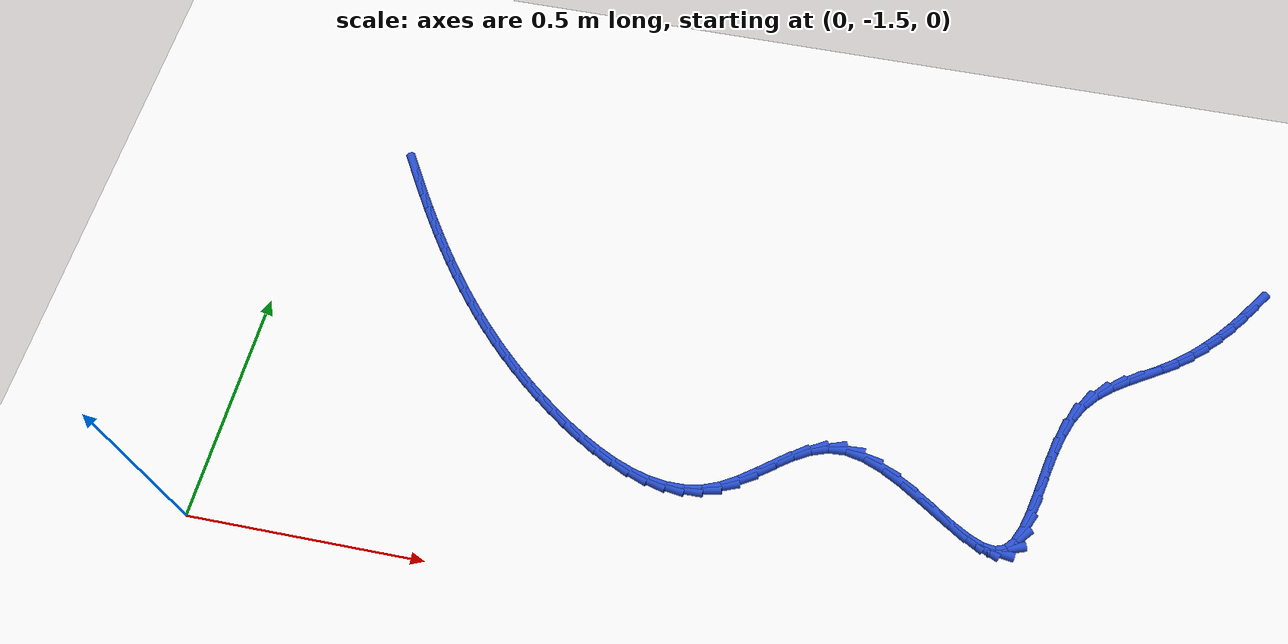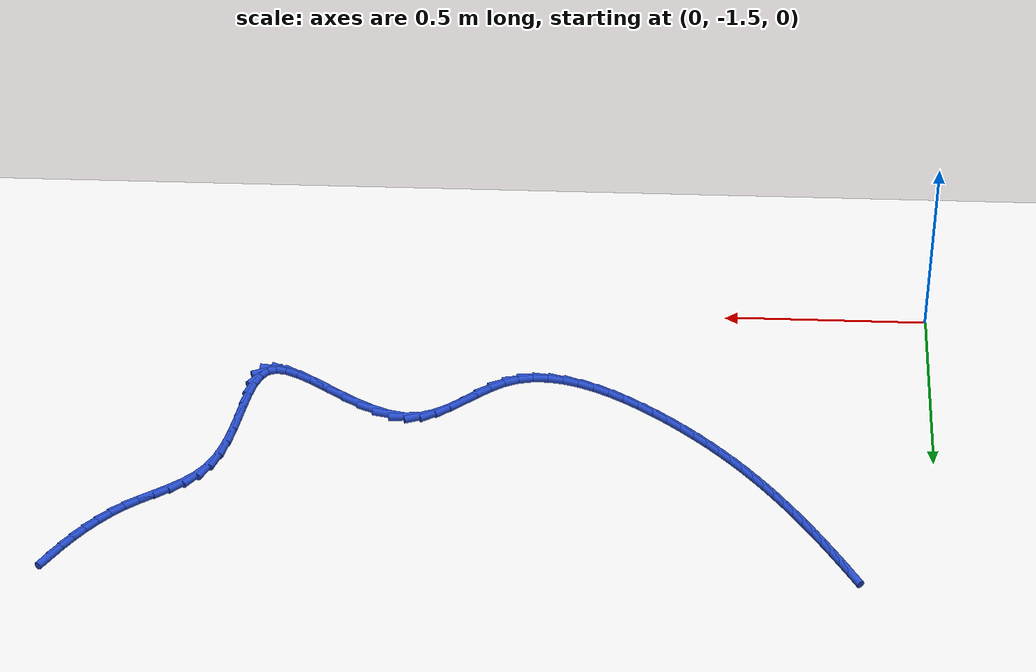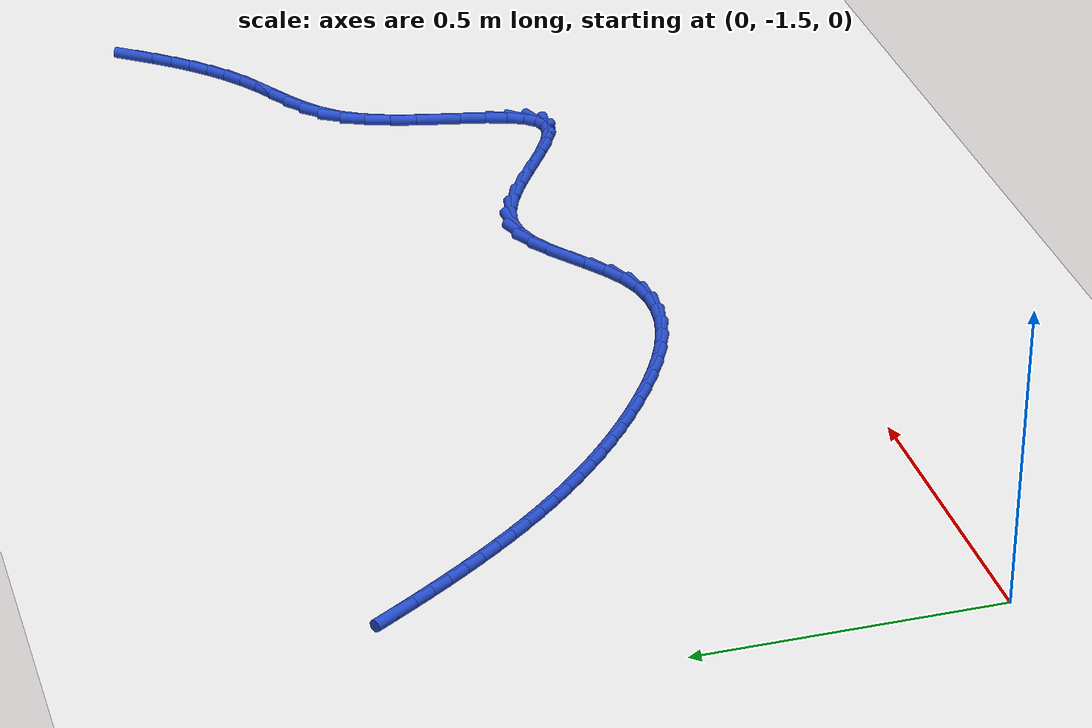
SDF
<sdf version="1.6">
 <world name="default">
  <model name="ground_plane">
   <static>1</static>
   <link name="link">
    <collision name="collision">
     <geometry><plane><normal>0 0 1</normal><size>100 100</size></plane></geometry>
     <surface><friction><ode><mu>100</mu><mu2>50</mu2></ode></friction></surface>
    </collision>
    <visual name="visual">
     <cast_shadows>0</cast_shadows>
     <geometry><plane><normal>0 0 1</normal><size>100 100</size></plane></geometry>
     <material>
      <script><uri>file://media/materials/scripts/gazebo.material</uri><name>Gazebo/WhiteGlow</name></script>
     </material>
    </visual>
   </link>
  </model>
  <model name="line">
   <link name="link_117">
    <pose>2.0910883042516453 -0.603083255693947 0.01 0 1.57 0.9489113558905689</pose>
    <collision name="collision">
     <geometry><cylinder><radius>0.01</radius><length>0.08</length></cylinder></geometry>
    </collision>
    <visual name="visual">
     <material>
      <script><name>Gazebo/Blue</name><uri>file://media/materials/scripts/gazebo.material</uri></script>
     </material>
     <geometry><cylinder><radius>0.01</radius><length>0.08</length></cylinder></geometry>
    </visual>
   </link>
   <link name="link_118">
    <pose>2.0681599488108424 -0.6350722097998005 0.01 0 1.57 0.9097379951899129</pose>
    <collision name="collision">
     <geometry><cylinder><radius>0.01</radius><length>0.08</length></cylinder></geometry>
    </collision>
    <visual name="visual">
     <material>
      <script><name>Gazebo/Blue</name><uri>file://media/materials/scripts/gazebo.material</uri></script>
     </material>
     <geometry><cylinder><radius>0.01</radius><length>0.08</length></cylinder></geometry>
    </visual>
   </link>
   <link name="link_119">
    <pose>2.0441043361655433 -0.6659998869459944 0.01 0 1.57 0.8632323567325106</pose>
    <collision name="collision">
     <geometry><cylinder><radius>0.01</radius><length>0.08</length></cylinder></geometry>
    </collision>
    <visual name="visual">
     <material>
      <script><name>Gazebo/Blue</name><uri>file://media/materials/scripts/gazebo.material</uri></script>
     </material>
     <geometry><cylinder><radius>0.01</radius><length>0.08</length></cylinder></geometry>
    </visual>
   </link>
   <link name="link_120">
    <pose>2.0187697473662283 -0.6956205306379298 0.01 0 1.57 0.8091488543556347</pose>
    <collision name="collision">
     <geometry><cylinder><radius>0.01</radius><length>0.08</length></cylinder></geometry>
    </collision>
    <visual name="visual">
     <material>
      <script><name>Gazebo/Blue</name><uri>file://media/materials/scripts/gazebo.material</uri></script>
     </material>
     <geometry><cylinder><radius>0.01</radius><length>0.08</length></cylinder></geometry>
    </visual>
   </link>
   <link name="link_121">
    <pose>1.992004463463375 -0.723688384381008 0.01 0 1.57 0.7473626050932654</pose>
    <collision name="collision">
     <geometry><cylinder><radius>0.01</radius><length>0.08</length></cylinder></geometry>
    </collision>
    <visual name="visual">
     <material>
      <script><name>Gazebo/Blue</name><uri>file://media/materials/scripts/gazebo.material</uri></script>
     </material>
     <geometry><cylinder><radius>0.01</radius><length>0.08</length></cylinder></geometry>
    </visual>
   </link>
   <link name="link_122">
    <pose>1.9636567655074628 -0.7499576916806296 0.01 0 1.57 0.6779664400903238</pose>
    <collision name="collision">
     <geometry><cylinder><radius>0.01</radius><length>0.08</length></cylinder></geometry>
    </collision>
    <visual name="visual">
     <material>
      <script><name>Gazebo/Blue</name><uri>file://media/materials/scripts/gazebo.material</uri></script>
     </material>
     <geometry><cylinder><radius>0.01</radius><length>0.08</length></cylinder></geometry>
    </visual>
   </link>
   <link name="link_123">
    <pose>1.9335749345489706 -0.7741826960421963 0.01 0 1.57 0.6023985125735167</pose>
    <collision name="collision">
     <geometry><cylinder><radius>0.01</radius><length>0.08</length></cylinder></geometry>
    </collision>
    <visual name="visual">
     <material>
      <script><name>Gazebo/Blue</name><uri>file://media/materials/scripts/gazebo.material</uri></script>
     </material>
     <geometry><cylinder><radius>0.01</radius><length>0.08</length></cylinder></geometry>
    </visual>
   </link>
   <link name="link_124">
    <pose>1.9016315048914676 -0.7961490337887418 0.01 0 1.57 0.5489062338513397</pose>
    <collision name="collision">
     <geometry><cylinder><radius>0.01</radius><length>0.08</length></cylinder></geometry>
    </collision>
    <visual name="visual">
     <material>
      <script><name>Gazebo/Blue</name><uri>file://media/materials/scripts/gazebo.material</uri></script>
     </material>
     <geometry><cylinder><radius>0.01</radius><length>0.08</length></cylinder></geometry>
    </visual>
   </link>
   <link name="link_125">
    <pose>1.8683600106695684 -0.8164979232583782 0.01 0 1.57 0.5471080242328394</pose>
    <collision name="collision">
     <geometry><cylinder><radius>0.01</radius><length>0.08</length></cylinder></geometry>
    </collision>
    <visual name="visual">
     <material>
      <script><name>Gazebo/Blue</name><uri>file://media/materials/scripts/gazebo.material</uri></script>
     </material>
     <geometry><cylinder><radius>0.01</radius><length>0.08</length></cylinder></geometry>
    </visual>
   </link>
   <link name="link_126">
    <pose>1.8350179577137176 -0.8368076740459577 0.01 0 1.57 0.5983735897410043</pose>
    <collision name="collision">
     <geometry><cylinder><radius>0.01</radius><length>0.08</length></cylinder></geometry>
    </collision>
    <visual name="visual">
     <material>
      <script><name>Gazebo/Blue</name><uri>file://media/materials/scripts/gazebo.material</uri></script>
     </material>
     <geometry><cylinder><radius>0.01</radius><length>0.08</length></cylinder></geometry>
    </visual>
   </link>
   <link name="link_127">
    <pose>1.8028997321825857 -0.8587043327411968 0.01 0 1.57 0.7035047867099672</pose>
    <collision name="collision">
     <geometry><cylinder><radius>0.01</radius><length>0.08</length></cylinder></geometry>
    </collision>
    <visual name="visual">
     <material>
      <script><name>Gazebo/Blue</name><uri>file://media/materials/scripts/gazebo.material</uri></script>
     </material>
     <geometry><cylinder><radius>0.01</radius><length>0.08</length></cylinder></geometry>
    </visual>
   </link>
   <link name="link_128">
    <pose>1.7732997202348453 -0.8838139459338126 0.01 0 1.57 0.8599190182430392</pose>
    <collision name="collision">
     <geometry><cylinder><radius>0.01</radius><length>0.08</length></cylinder></geometry>
    </collision>
    <visual name="visual">
     <material>
      <script><name>Gazebo/Blue</name><uri>file://media/materials/scripts/gazebo.material</uri></script>
     </material>
     <geometry><cylinder><radius>0.01</radius><length>0.08</length></cylinder></geometry>
    </visual>
   </link>
   <link name="link_129">
    <pose>1.7475123080291655 -0.9137625602135209 0.01 0 1.57 1.0482765522238797</pose>
    <collision name="collision">
     <geometry><cylinder><radius>0.01</radius><length>0.08</length></cylinder></geometry>
    </collision>
    <visual name="visual">
     <material>
      <script><name>Gazebo/Blue</name><uri>file://media/materials/scripts/gazebo.material</uri></script>
     </material>
     <geometry><cylinder><radius>0.01</radius><length>0.08</length></cylinder></geometry>
    </visual>
   </link>
   <link name="link_130">
    <pose>1.7266770788756765 -0.9499403290383713 0.01 0 1.57 1.1984696601797593</pose>
    <collision name="collision">
     <geometry><cylinder><radius>0.01</radius><length>0.08</length></cylinder></geometry>
    </collision>
    <visual name="visual">
     <material>
      <script><name>Gazebo/Blue</name><uri>file://media/materials/scripts/gazebo.material</uri></script>
     </material>
     <geometry><cylinder><radius>0.01</radius><length>0.08</length></cylinder></geometry>
    </visual>
   </link>
   <link name="link_131">
    <pose>1.7104533843161078 -0.991481785180278 0.01 0 1.57 1.2929285482295565</pose>
    <collision name="collision">
     <geometry><cylinder><radius>0.01</radius><length>0.08</length></cylinder></geometry>
    </collision>
    <visual name="visual">
     <material>
      <script><name>Gazebo/Blue</name><uri>file://media/materials/scripts/gazebo.material</uri></script>
     </material>
     <geometry><cylinder><radius>0.01</radius><length>0.08</length></cylinder></geometry>
    </visual>
   </link>
   <link name="link_132">
    <pose>1.6976781691881468 -1.03626825389754 0.01 0 1.57 1.345933554381266</pose>
    <collision name="collision">
     <geometry><cylinder><radius>0.01</radius><length>0.08</length></cylinder></geometry>
    </collision>
    <visual name="visual">
     <material>
      <script><name>Gazebo/Blue</name><uri>file://media/materials/scripts/gazebo.material</uri></script>
     </material>
     <geometry><cylinder><radius>0.01</radius><length>0.08</length></cylinder></geometry>
    </visual>
   </link>
   <link name="link_133">
    <pose>1.6871795618790968 -1.0821676256821648 0.01 0 1.57 1.3644650015767998</pose>
    <collision name="collision">
     <geometry><cylinder><radius>0.01</radius><length>0.08</length></cylinder></geometry>
    </collision>
    <visual name="visual">
     <material>
      <script><name>Gazebo/Blue</name><uri>file://media/materials/scripts/gazebo.material</uri></script>
     </material>
     <geometry><cylinder><radius>0.01</radius><length>0.08</length></cylinder></geometry>
    </visual>
   </link>
   <link name="link_134">
    <pose>1.6777856907762598 -1.1270477910261583 0.01 0 1.57 1.347839857289276</pose>
    <collision name="collision">
     <geometry><cylinder><radius>0.01</radius><length>0.08</length></cylinder></geometry>
    </collision>
    <visual name="visual">
     <material>
      <script><name>Gazebo/Blue</name><uri>file://media/materials/scripts/gazebo.material</uri></script>
     </material>
     <geometry><cylinder><radius>0.01</radius><length>0.08</length></cylinder></geometry>
    </visual>
   </link>
   <link name="link_135">
    <pose>1.668324684266939 -1.1687766404215283 0.01 0 1.57 1.2852305531044195</pose>
    <collision name="collision">
     <geometry><cylinder><radius>0.01</radius><length>0.08</length></cylinder></geometry>
    </collision>
    <visual name="visual">
     <material>
      <script><name>Gazebo/Blue</name><uri>file://media/materials/scripts/gazebo.material</uri></script>
     </material>
     <geometry><cylinder><radius>0.01</radius><length>0.08</length></cylinder></geometry>
    </visual>
   </link>
   <link name="link_136">
    <pose>1.657624670738437 -1.205222064360281 0.01 0 1.57 1.1465841877371827</pose>
    <collision name="collision">
     <geometry><cylinder><radius>0.01</radius><length>0.08</length></cylinder></geometry>
    </collision>
    <visual name="visual">
     <material>
      <script><name>Gazebo/Blue</name><uri>file://media/materials/scripts/gazebo.material</uri></script>
     </material>
     <geometry><cylinder><radius>0.01</radius><length>0.08</length></cylinder></geometry>
    </visual>
   </link>
   <link name="link_137">
    <pose>1.6445137785780561 -1.2342519533344236 0.01 0 1.57 0.8623305795887752</pose>
    <collision name="collision">
     <geometry><cylinder><radius>0.01</radius><length>0.08</length></cylinder></geometry>
    </collision>
    <visual name="visual">
     <material>
      <script><name>Gazebo/Blue</name><uri>file://media/materials/scripts/gazebo.material</uri></script>
     </material>
     <geometry><cylinder><radius>0.01</radius><length>0.08</length></cylinder></geometry>
    </visual>
   </link>
   <link name="link_138">
    <pose>1.6278201361731 -1.2537341978359628 0.01 0 1.57 0.35288094552549476</pose>
    <collision name="collision">
     <geometry><cylinder><radius>0.01</radius><length>0.08</length></cylinder></geometry>
    </collision>
    <visual name="visual">
     <material>
      <script><name>Gazebo/Blue</name><uri>file://media/materials/scripts/gazebo.material</uri></script>
     </material>
     <geometry><cylinder><radius>0.01</radius><length>0.08</length></cylinder></geometry>
    </visual>
   </link>
   <link name="link_139">
    <pose>1.6064072611299218 -1.2616204903429031 0.01 0 1.57 -0.1364085439508365</pose>
    <collision name="collision">
     <geometry><cylinder><radius>0.01</radius><length>0.08</length></cylinder></geometry>
    </collision>
    <visual name="visual">
     <material>
      <script><name>Gazebo/Blue</name><uri>file://media/materials/scripts/gazebo.material</uri></script>
     </material>
     <geometry><cylinder><radius>0.01</radius><length>0.08</length></cylinder></geometry>
    </visual>
   </link>
   <link name="link_140">
    <pose>1.5800419798902405 -1.2580015667030153 0.01 0 1.57 -0.3953998971141093</pose>
    <collision name="collision">
     <geometry><cylinder><radius>0.01</radius><length>0.08</length></cylinder></geometry>
    </collision>
    <visual name="visual">
     <material>
      <script><name>Gazebo/Blue</name><uri>file://media/materials/scripts/gazebo.material</uri></script>
     </material>
     <geometry><cylinder><radius>0.01</radius><length>0.08</length></cylinder></geometry>
    </visual>
   </link>
   <link name="link_141">
    <pose>1.5494470492146915 -1.2452318142756864 0.01 0 1.57 -0.5190781849320225</pose>
    <collision name="collision">
     <geometry><cylinder><radius>0.01</radius><length>0.08</length></cylinder></geometry>
    </collision>
    <visual name="visual">
     <material>
      <script><name>Gazebo/Blue</name><uri>file://media/materials/scripts/gazebo.material</uri></script>
     </material>
     <geometry><cylinder><radius>0.01</radius><length>0.08</length></cylinder></geometry>
    </visual>
   </link>
   <link name="link_142">
    <pose>1.5153911499575372 -1.2257743690831593 0.01 0 1.57 -0.572456679606811</pose>
    <collision name="collision">
     <geometry><cylinder><radius>0.01</radius><length>0.08</length></cylinder></geometry>
    </collision>
    <visual name="visual">
     <material>
      <script><name>Gazebo/Blue</name><uri>file://media/materials/scripts/gazebo.material</uri></script>
     </material>
     <geometry><cylinder><radius>0.01</radius><length>0.08</length></cylinder></geometry>
    </visual>
   </link>
   <link name="link_143">
    <pose>1.4786429629730409 -1.2020923671476758 0.01 0 1.57 -0.5819313406588756</pose>
    <collision name="collision">
     <geometry><cylinder><radius>0.01</radius><length>0.08</length></cylinder></geometry>
    </collision>
    <visual name="visual">
     <material>
      <script><name>Gazebo/Blue</name><uri>file://media/materials/scripts/gazebo.material</uri></script>
     </material>
     <geometry><cylinder><radius>0.01</radius><length>0.08</length></cylinder></geometry>
    </visual>
   </link>
   <link name="link_144">
    <pose>1.4399711691154655 -1.1766489444914785 0.01 0 1.57 -0.5558865025090212</pose>
    <collision name="collision">
     <geometry><cylinder><radius>0.01</radius><length>0.08</length></cylinder></geometry>
    </collision>
    <visual name="visual">
     <material>
      <script><name>Gazebo/Blue</name><uri>file://media/materials/scripts/gazebo.material</uri></script>
     </material>
     <geometry><cylinder><radius>0.01</radius><length>0.08</length></cylinder></geometry>
    </visual>
   </link>
   <link name="link_145">
    <pose>1.400144449239076 -1.1519072371368106 0.01 0 1.57 -0.4924696910514101</pose>
    <collision name="collision">
     <geometry><cylinder><radius>0.01</radius><length>0.08</length></cylinder></geometry>
    </collision>
    <visual name="visual">
     <material>
      <script><name>Gazebo/Blue</name><uri>file://media/materials/scripts/gazebo.material</uri></script>
     </material>
     <geometry><cylinder><radius>0.01</radius><length>0.08</length></cylinder></geometry>
    </visual>
   </link>
   <link name="link_146">
    <pose>1.359931484198135 -1.1303303811059142 0.01 0 1.57 -0.3808668383973027</pose>
    <collision name="collision">
     <geometry><cylinder><radius>0.01</radius><length>0.08</length></cylinder></geometry>
    </collision>
    <visual name="visual">
     <material>
      <script><name>Gazebo/Blue</name><uri>file://media/materials/scripts/gazebo.material</uri></script>
     </material>
     <geometry><cylinder><radius>0.01</radius><length>0.08</length></cylinder></geometry>
    </visual>
   </link>
   <link name="link_147">
    <pose>1.3201009548469058 -1.1143815124210317 0.01 0 1.57 -0.20042312433964815</pose>
    <collision name="collision">
     <geometry><cylinder><radius>0.01</radius><length>0.08</length></cylinder></geometry>
    </collision>
    <visual name="visual">
     <material>
      <script><name>Gazebo/Blue</name><uri>file://media/materials/scripts/gazebo.material</uri></script>
     </material>
     <geometry><cylinder><radius>0.01</radius><length>0.08</length></cylinder></geometry>
    </visual>
   </link>
   <link name="link_148">
    <pose>1.281421542039652 -1.106523767104405 0.01 0 1.57 0.0676255069505694</pose>
    <collision name="collision">
     <geometry><cylinder><radius>0.01</radius><length>0.08</length></cylinder></geometry>
    </collision>
    <visual name="visual">
     <material>
      <script><name>Gazebo/Blue</name><uri>file://media/materials/scripts/gazebo.material</uri></script>
     </material>
     <geometry><cylinder><radius>0.01</radius><length>0.08</length></cylinder></geometry>
    </visual>
   </link>
   <link name="link_149">
    <pose>1.244610740669523 -1.1090169179343035 0.01 0 1.57 0.3372379407981845</pose>
    <collision name="collision">
     <geometry><cylinder><radius>0.01</radius><length>0.08</length></cylinder></geometry>
    </collision>
    <visual name="visual">
     <material>
      <script><name>Gazebo/Blue</name><uri>file://media/materials/scripts/gazebo.material</uri></script>
     </material>
     <geometry><cylinder><radius>0.01</radius><length>0.08</length></cylinder></geometry>
    </visual>
   </link>
   <link name="link_150">
    <pose>1.2096682420375198 -1.1212688840975569 0.01 0 1.57 0.5217255215022579</pose>
    <collision name="collision">
     <geometry><cylinder><radius>0.01</radius><length>0.08</length></cylinder></geometry>
    </collision>
    <visual name="visual">
     <material>
      <script><name>Gazebo/Blue</name><uri>file://media/materials/scripts/gazebo.material</uri></script>
     </material>
     <geometry><cylinder><radius>0.01</radius><length>0.08</length></cylinder></geometry>
    </visual>
   </link>
   <link name="link_151">
    <pose>1.1760647777841424 -1.1405860133706092 0.01 0 1.57 0.624412501760082</pose>
    <collision name="collision">
     <geometry><cylinder><radius>0.01</radius><length>0.08</length></cylinder></geometry>
    </collision>
    <visual name="visual">
     <material>
      <script><name>Gazebo/Blue</name><uri>file://media/materials/scripts/gazebo.material</uri></script>
     </material>
     <geometry><cylinder><radius>0.01</radius><length>0.08</length></cylinder></geometry>
    </visual>
   </link>
   <link name="link_152">
    <pose>1.143258769263615 -1.164225744420911 0.01 0 1.57 0.6591837547038302</pose>
    <collision name="collision">
     <geometry><cylinder><radius>0.01</radius><length>0.08</length></cylinder></geometry>
    </collision>
    <visual name="visual">
     <material>
      <script><name>Gazebo/Blue</name><uri>file://media/materials/scripts/gazebo.material</uri></script>
     </material>
     <geometry><cylinder><radius>0.01</radius><length>0.08</length></cylinder></geometry>
    </visual>
   </link>
   <link name="link_153">
    <pose>1.1107086378301607 -1.1894455159159092 0.01 0 1.57 0.632305863143715</pose>
    <collision name="collision">
     <geometry><cylinder><radius>0.01</radius><length>0.08</length></cylinder></geometry>
    </collision>
    <visual name="visual">
     <material>
      <script><name>Gazebo/Blue</name><uri>file://media/materials/scripts/gazebo.material</uri></script>
     </material>
     <geometry><cylinder><radius>0.01</radius><length>0.08</length></cylinder></geometry>
    </visual>
   </link>
   <link name="link_154">
    <pose>1.077872804838005 -1.2135027665230544 0.01 0 1.57 0.5394207001151455</pose>
    <collision name="collision">
     <geometry><cylinder><radius>0.01</radius><length>0.08</length></cylinder></geometry>
    </collision>
    <visual name="visual">
     <material>
      <script><name>Gazebo/Blue</name><uri>file://media/materials/scripts/gazebo.material</uri></script>
     </material>
     <geometry><cylinder><radius>0.01</radius><length>0.08</length></cylinder></geometry>
    </visual>
   </link>
   <link name="link_155">
    <pose>1.0442096916413712 -1.2336549349097945 0.01 0 1.57 0.3730513504314653</pose>
    <collision name="collision">
     <geometry><cylinder><radius>0.01</radius><length>0.08</length></cylinder></geometry>
    </collision>
    <visual name="visual">
     <material>
      <script><name>Gazebo/Blue</name><uri>file://media/materials/scripts/gazebo.material</uri></script>
     </material>
     <geometry><cylinder><radius>0.01</radius><length>0.08</length></cylinder></geometry>
    </visual>
   </link>
   <link name="link_156">
    <pose>1.0092240461803266 -1.247347537099548 0.01 0 1.57 0.18232489378246836</pose>
    <collision name="collision">
     <geometry><cylinder><radius>0.01</radius><length>0.08</length></cylinder></geometry>
    </collision>
    <visual name="visual">
     <material>
      <script><name>Gazebo/Blue</name><uri>file://media/materials/scripts/gazebo.material</uri></script>
     </material>
     <geometry><cylinder><radius>0.01</radius><length>0.08</length></cylinder></geometry>
    </visual>
   </link>
   <link name="link_157">
    <pose>0.9729170567260192 -1.254041544888418 0.01 0 1.57 0.010176463273134966</pose>
    <collision name="collision">
     <geometry><cylinder><radius>0.01</radius><length>0.08</length></cylinder></geometry>
    </collision>
    <visual name="visual">
     <material>
      <script><name>Gazebo/Blue</name><uri>file://media/materials/scripts/gazebo.material</uri></script>
     </material>
     <geometry><cylinder><radius>0.01</radius><length>0.08</length></cylinder></geometry>
    </visual>
   </link>
   <link name="link_158">
    <pose>0.9355912731813615 -1.2544214024666265 0.01 0 1.57 -0.136706384888463</pose>
    <collision name="collision">
     <geometry><cylinder><radius>0.01</radius><length>0.08</length></cylinder></geometry>
    </collision>
    <visual name="visual">
     <material>
      <script><name>Gazebo/Blue</name><uri>file://media/materials/scripts/gazebo.material</uri></script>
     </material>
     <geometry><cylinder><radius>0.01</radius><length>0.08</length></cylinder></geometry>
    </visual>
   </link>
   <link name="link_159">
    <pose>0.8975534825648588 -1.2491887559287274 0.01 0 1.57 -0.25797857410171865</pose>
    <collision name="collision">
     <geometry><cylinder><radius>0.01</radius><length>0.08</length></cylinder></geometry>
    </collision>
    <visual name="visual">
     <material>
      <script><name>Gazebo/Blue</name><uri>file://media/materials/scripts/gazebo.material</uri></script>
     </material>
     <geometry><cylinder><radius>0.01</radius><length>0.08</length></cylinder></geometry>
    </visual>
   </link>
   <link name="link_160">
    <pose>0.8591104718950162 -1.239045251369275 0.01 0 1.57 -0.3564866026705455</pose>
    <collision name="collision">
     <geometry><cylinder><radius>0.01</radius><length>0.08</length></cylinder></geometry>
    </collision>
    <visual name="visual">
     <material>
      <script><name>Gazebo/Blue</name><uri>file://media/materials/scripts/gazebo.material</uri></script>
     </material>
     <geometry><cylinder><radius>0.01</radius><length>0.08</length></cylinder></geometry>
    </visual>
   </link>
   <link name="link_161">
    <pose>0.8205690281903388 -1.224692534882821 0.01 0 1.57 -0.43601661406498443</pose>
    <collision name="collision">
     <geometry><cylinder><radius>0.01</radius><length>0.08</length></cylinder></geometry>
    </collision>
    <visual name="visual">
     <material>
      <script><name>Gazebo/Blue</name><uri>file://media/materials/scripts/gazebo.material</uri></script>
     </material>
     <geometry><cylinder><radius>0.01</radius><length>0.08</length></cylinder></geometry>
    </visual>
   </link>
   <link name="link_162">
    <pose>0.782235938469332 -1.2068322525639208 0.01 0 1.57 -0.5001254890773432</pose>
    <collision name="collision">
     <geometry><cylinder><radius>0.01</radius><length>0.08</length></cylinder></geometry>
    </collision>
    <visual name="visual">
     <material>
      <script><name>Gazebo/Blue</name><uri>file://media/materials/scripts/gazebo.material</uri></script>
     </material>
     <geometry><cylinder><radius>0.01</radius><length>0.08</length></cylinder></geometry>
    </visual>
   </link>
   <link name="link_163">
    <pose>0.7444179897505016 -1.1861660505071279 0.01 0 1.57 -0.5517273964059027</pose>
    <collision name="collision">
     <geometry><cylinder><radius>0.01</radius><length>0.08</length></cylinder></geometry>
    </collision>
    <visual name="visual">
     <material>
      <script><name>Gazebo/Blue</name><uri>file://media/materials/scripts/gazebo.material</uri></script>
     </material>
     <geometry><cylinder><radius>0.01</radius><length>0.08</length></cylinder></geometry>
    </visual>
   </link>
   <link name="link_164">
    <pose>0.707421969052352 -1.1633955748069948 0.01 0 1.57 -0.5930343524963294</pose>
    <collision name="collision">
     <geometry><cylinder><radius>0.01</radius><length>0.08</length></cylinder></geometry>
    </collision>
    <visual name="visual">
     <material>
      <script><name>Gazebo/Blue</name><uri>file://media/materials/scripts/gazebo.material</uri></script>
     </material>
     <geometry><cylinder><radius>0.01</radius><length>0.08</length></cylinder></geometry>
    </visual>
   </link>
   <link name="link_165">
    <pose>0.6715546633933893 -1.139222471558077 0.01 0 1.57 -0.6264182564423573</pose>
    <collision name="collision">
     <geometry><cylinder><radius>0.01</radius><length>0.08</length></cylinder></geometry>
    </collision>
    <visual name="visual">
     <material>
      <script><name>Gazebo/Blue</name><uri>file://media/materials/scripts/gazebo.material</uri></script>
     </material>
     <geometry><cylinder><radius>0.01</radius><length>0.08</length></cylinder></geometry>
    </visual>
   </link>
   <link name="link_166">
    <pose>0.6370835615276987 -1.1142776942436776 0.01 0 1.57 -0.6576324278328595</pose>
    <collision name="collision">
     <geometry><cylinder><radius>0.01</radius><length>0.08</length></cylinder></geometry>
    </collision>
    <visual name="visual">
     <material>
      <script><name>Gazebo/Blue</name><uri>file://media/materials/scripts/gazebo.material</uri></script>
     </material>
     <geometry><cylinder><radius>0.01</radius><length>0.08</length></cylinder></geometry>
    </visual>
   </link>
   <link name="link_167">
    <pose>0.6040304160599214 -1.0887501480699273 0.01 0 1.57 -0.688534744380334</pose>
    <collision name="collision">
     <geometry><cylinder><radius>0.01</radius><length>0.08</length></cylinder></geometry>
    </collision>
    <visual name="visual">
     <material>
      <script><name>Gazebo/Blue</name><uri>file://media/materials/scripts/gazebo.material</uri></script>
     </material>
     <geometry><cylinder><radius>0.01</radius><length>0.08</length></cylinder></geometry>
    </visual>
   </link>
   <link name="link_168">
    <pose>0.572322184825602 -1.0626582144333419 0.01 0 1.57 -0.718947436686817</pose>
    <collision name="collision">
     <geometry><cylinder><radius>0.01</radius><length>0.08</length></cylinder></geometry>
    </collision>
    <visual name="visual">
     <material>
      <script><name>Gazebo/Blue</name><uri>file://media/materials/scripts/gazebo.material</uri></script>
     </material>
     <geometry><cylinder><radius>0.01</radius><length>0.08</length></cylinder></geometry>
    </visual>
   </link>
   <link name="link_169">
    <pose>0.541885624084359 -1.0360199121208176 0.01 0 1.57 -0.7486893771665234</pose>
    <collision name="collision">
     <geometry><cylinder><radius>0.01</radius><length>0.08</length></cylinder></geometry>
    </collision>
    <visual name="visual">
     <material>
      <script><name>Gazebo/Blue</name><uri>file://media/materials/scripts/gazebo.material</uri></script>
     </material>
     <geometry><cylinder><radius>0.01</radius><length>0.08</length></cylinder></geometry>
    </visual>
   </link>
   <link name="link_170">
    <pose>0.5126474900958097 -1.0088532599192492 0.01 0 1.57 -0.7775838720873931</pose>
    <collision name="collision">
     <geometry><cylinder><radius>0.01</radius><length>0.08</length></cylinder></geometry>
    </collision>
    <visual name="visual">
     <material>
      <script><name>Gazebo/Blue</name><uri>file://media/materials/scripts/gazebo.material</uri></script>
     </material>
     <geometry><cylinder><radius>0.01</radius><length>0.08</length></cylinder></geometry>
    </visual>
   </link>
   <link name="link_171">
    <pose>0.4845345391195715 -0.9811762766155325 0.01 0 1.57 -0.8054620603312979</pose>
    <collision name="collision">
     <geometry><cylinder><radius>0.01</radius><length>0.08</length></cylinder></geometry>
    </collision>
    <visual name="visual">
     <material>
      <script><name>Gazebo/Blue</name><uri>file://media/materials/scripts/gazebo.material</uri></script>
     </material>
     <geometry><cylinder><radius>0.01</radius><length>0.08</length></cylinder></geometry>
    </visual>
   </link>
   <link name="link_172">
    <pose>0.4574735274152618 -0.9530069809965629 0.01 0 1.57 -0.8321658748208037</pose>
    <collision name="collision">
     <geometry><cylinder><radius>0.01</radius><length>0.08</length></cylinder></geometry>
    </collision>
    <visual name="visual">
     <material>
      <script><name>Gazebo/Blue</name><uri>file://media/materials/scripts/gazebo.material</uri></script>
     </material>
     <geometry><cylinder><radius>0.01</radius><length>0.08</length></cylinder></geometry>
    </visual>
   </link>
   <link name="link_173">
    <pose>0.431391211242498 -0.9243633918492351 0.01 0 1.57 -0.8575504397121967</pose>
    <collision name="collision">
     <geometry><cylinder><radius>0.01</radius><length>0.08</length></cylinder></geometry>
    </collision>
    <visual name="visual">
     <material>
      <script><name>Gazebo/Blue</name><uri>file://media/materials/scripts/gazebo.material</uri></script>
     </material>
     <geometry><cylinder><radius>0.01</radius><length>0.08</length></cylinder></geometry>
    </visual>
   </link>
   <link name="link_174">
    <pose>0.40621434686089747 -0.8952635279604452 0.01 0 1.57 -0.88148582928174</pose>
    <collision name="collision">
     <geometry><cylinder><radius>0.01</radius><length>0.08</length></cylinder></geometry>
    </collision>
    <visual name="visual">
     <material>
      <script><name>Gazebo/Blue</name><uri>file://media/materials/scripts/gazebo.material</uri></script>
     </material>
     <geometry><cylinder><radius>0.01</radius><length>0.08</length></cylinder></geometry>
    </visual>
   </link>
   <link name="link_175">
    <pose>0.38186969053007774 -0.865725408117088 0.01 0 1.57 -0.903858168966416</pose>
    <collision name="collision">
     <geometry><cylinder><radius>0.01</radius><length>0.08</length></cylinder></geometry>
    </collision>
    <visual name="visual">
     <material>
      <script><name>Gazebo/Blue</name><uri>file://media/materials/scripts/gazebo.material</uri></script>
     </material>
     <geometry><cylinder><radius>0.01</radius><length>0.08</length></cylinder></geometry>
    </visual>
   </link>
   <link name="link_176">
    <pose>0.3582839985096562 -0.8357670511060592 0.01 0 1.57 -0.9245701085825996</pose>
    <collision name="collision">
     <geometry><cylinder><radius>0.01</radius><length>0.08</length></cylinder></geometry>
    </collision>
    <visual name="visual">
     <material>
      <script><name>Gazebo/Blue</name><uri>file://media/materials/scripts/gazebo.material</uri></script>
     </material>
     <geometry><cylinder><radius>0.01</radius><length>0.08</length></cylinder></geometry>
    </visual>
   </link>
   <link name="link_177">
    <pose>0.3353840270592502 -0.8054064757142538 0.01 0 1.57 -0.9435407373990135</pose>
    <collision name="collision">
     <geometry><cylinder><radius>0.01</radius><length>0.08</length></cylinder></geometry>
    </collision>
    <visual name="visual">
     <material>
      <script><name>Gazebo/Blue</name><uri>file://media/materials/scripts/gazebo.material</uri></script>
     </material>
     <geometry><cylinder><radius>0.01</radius><length>0.08</length></cylinder></geometry>
    </visual>
   </link>
   <link name="link_178">
    <pose>0.3130965324384772 -0.7746617007285677 0.01 0 1.57 -0.960705037815962</pose>
    <collision name="collision">
     <geometry><cylinder><radius>0.01</radius><length>0.08</length></cylinder></geometry>
    </collision>
    <visual name="visual">
     <material>
      <script><name>Gazebo/Blue</name><uri>file://media/materials/scripts/gazebo.material</uri></script>
     </material>
     <geometry><cylinder><radius>0.01</radius><length>0.08</length></cylinder></geometry>
    </visual>
   </link>
   <link name="link_179">
    <pose>0.29134827090695437 -0.7435507449358958 0.01 0 1.57 -0.9760129884558179</pose>
    <collision name="collision">
     <geometry><cylinder><radius>0.01</radius><length>0.08</length></cylinder></geometry>
    </collision>
    <visual name="visual">
     <material>
      <script><name>Gazebo/Blue</name><uri>file://media/materials/scripts/gazebo.material</uri></script>
     </material>
     <geometry><cylinder><radius>0.01</radius><length>0.08</length></cylinder></geometry>
    </visual>
   </link>
   <link name="link_180">
    <pose>0.27006599872429954 -0.7120916271231336 0.01 0 1.57 -0.989428429831317</pose>
    <collision name="collision">
     <geometry><cylinder><radius>0.01</radius><length>0.08</length></cylinder></geometry>
    </collision>
    <visual name="visual">
     <material>
      <script><name>Gazebo/Blue</name><uri>file://media/materials/scripts/gazebo.material</uri></script>
     </material>
     <geometry><cylinder><radius>0.01</radius><length>0.08</length></cylinder></geometry>
    </visual>
   </link>
   <link name="link_181">
    <pose>0.2491764721501299 -0.6803023660771764 0.01 0 1.57 -1.000927798870858</pose>
    <collision name="collision">
     <geometry><cylinder><radius>0.01</radius><length>0.08</length></cylinder></geometry>
    </collision>
    <visual name="visual">
     <material>
      <script><name>Gazebo/Blue</name><uri>file://media/materials/scripts/gazebo.material</uri></script>
     </material>
     <geometry><cylinder><radius>0.01</radius><length>0.08</length></cylinder></geometry>
    </visual>
   </link>
   <link name="link_182">
    <pose>0.22860644744406278 -0.6482009805849196 0.01 0 1.57 -1.0104988253297367</pose>
    <collision name="collision">
     <geometry><cylinder><radius>0.01</radius><length>0.08</length></cylinder></geometry>
    </collision>
    <visual name="visual">
     <material>
      <script><name>Gazebo/Blue</name><uri>file://media/materials/scripts/gazebo.material</uri></script>
     </material>
     <geometry><cylinder><radius>0.01</radius><length>0.08</length></cylinder></geometry>
    </visual>
   </link>
   <link name="link_183">
    <pose>0.20828268086571572 -0.6158054894332586 0.01 0 1.57 -1.018142591343398</pose>
    <collision name="collision">
     <geometry><cylinder><radius>0.01</radius><length>0.08</length></cylinder></geometry>
    </collision>
    <visual name="visual">
     <material>
      <script><name>Gazebo/Blue</name><uri>file://media/materials/scripts/gazebo.material</uri></script>
     </material>
     <geometry><cylinder><radius>0.01</radius><length>0.08</length></cylinder></geometry>
    </visual>
   </link>
  </model>
 </world>
</sdf>
